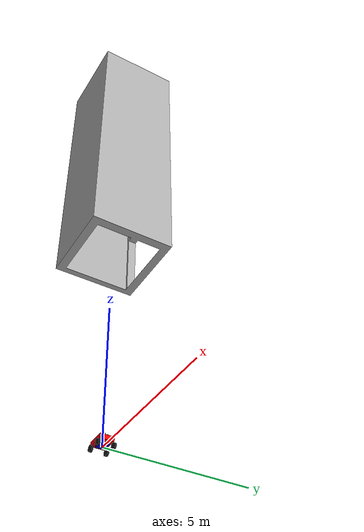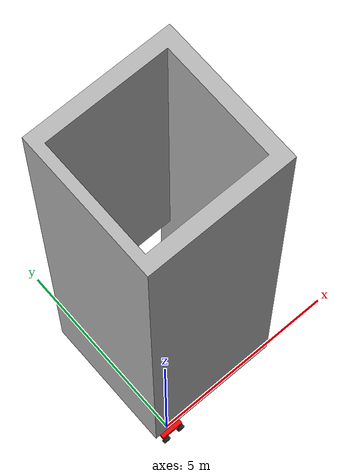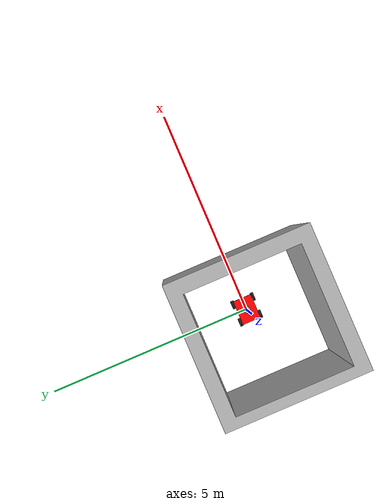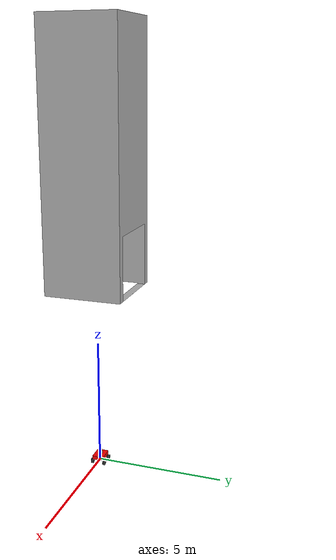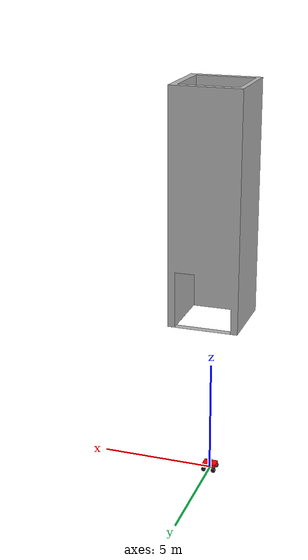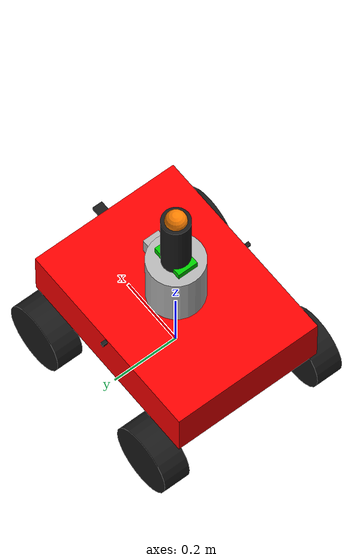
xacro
<?xml version="1.0"?>
<robot name="firefighter_robot" xmlns:xacro="http://www.ros.org/wiki/xacro">

    <!-- Robot Constants -->
    <xacro:property name="base_width" value="0.45" />
    <xacro:property name="base_length" value="0.6" />
    <xacro:property name="base_height" value="0.15" />
    <xacro:property name="wheel_radius" value="0.1" />
    <xacro:property name="wheel_width" value="0.08" />
    <xacro:property name="wheel_separation_width" value="0.5" />
    <xacro:property name="wheel_separation_length" value="0.45" />
    <xacro:property name="launcher_base_height" value="0.15" />
    <xacro:property name="launcher_base_size" value="0.3" />
    <xacro:property name="launcher_height" value="0.25" />
    <xacro:property name="launcher_radius" value="0.08" />

    <!-- New magazine properties -->
    <xacro:property name="magazine_width" value="0.08" />
    <xacro:property name="magazine_length" value="0.08" />
    <xacro:property name="magazine_height" value="0.3" />
    <xacro:property name="magazine_wall_thickness" value="0.005" />
    <xacro:property name="door_thickness" value="0.005" />
    <xacro:property name="ball_radius" value="0.03" />
    <!-- Removed redefining pi as it's already defined in ROS xacro -->

    <!-- Materials -->
    <material name="red">
        <color rgba="1.0 0.0 0.0 1.0" />
    </material>
    <material name="black">
        <color rgba="0.1 0.1 0.1 1.0" />
    </material>
    <material name="silver">
        <color rgba="0.7 0.7 0.7 1.0" />
    </material>
    <material name="blue">
        <color rgba="0.0 0.0 0.8 1.0" />
    </material>
    <material name="green">
        <color rgba="0.0 0.8 0.0 1.0" />
    </material>
    <material name="orange">
        <color rgba="1.0 0.5 0.0 1.0" />
    </material>

    <!-- Robot Base -->
    <link name="base_footprint" />

    <joint name="base_joint" type="fixed">
        <parent link="base_footprint" />
        <child link="base_link" />
        <origin xyz="0 0 ${wheel_radius}" rpy="0 0 0" />
    </joint>

    <link name="base_link">
        <visual>
            <origin xyz="0 0 ${base_height/2}" rpy="0 0 0" />
            <geometry>
                <box size="${base_length} ${base_width} ${base_height}" />
            </geometry>
            <material name="red" />
        </visual>
        <collision>
            <origin xyz="0 0 ${base_height/2}" rpy="0 0 0" />
            <geometry>
                <box size="${base_length} ${base_width} ${base_height}" />
            </geometry>
        </collision>
        <inertial>
            <origin xyz="0 0 ${base_height/2}" rpy="0 0 0" />
            <mass value="10.0" />
            <inertia ixx="0.22" ixy="0.0" ixz="0.0" iyy="0.45" iyz="0.0" izz="0.65" />
        </inertial>
    </link>

    <!-- Wheels -->
    <xacro:macro name="wheel_link" params="name x y">
        <link name="${name}_wheel">
            <visual>
                <origin xyz="0 0 0" rpy="${pi/2} 0 0" />
                <geometry>
                    <cylinder radius="${wheel_radius}" length="${wheel_width}" />
                </geometry>
                <material name="black" />
            </visual>
            <collision>
                <origin xyz="0 0 0" rpy="${pi/2} 0 0" />
                <geometry>
                    <cylinder radius="${wheel_radius}" length="${wheel_width}" />
                </geometry>
            </collision>
            <inertial>
                <origin xyz="0 0 0" rpy="${pi/2} 0 0" />
                <mass value="1.0" />
                <inertia ixx="0.0045" ixy="0.0" ixz="0.0" iyy="0.0045" iyz="0.0" izz="0.0078" />
            </inertial>
        </link>

        <!-- Inside the wheel_link macro -->
        <joint name="${name}_wheel_joint" type="continuous">
            <parent link="base_link" />
            <child link="${name}_wheel" />
            <!-- Change z from 0 to -wheel_radius to lower wheels -->
            <origin xyz="${x} ${y} -${wheel_radius}" rpy="0 0 0" />
            <axis xyz="0 1 0" />
        </joint>
    </xacro:macro>

    <!-- Create 4 wheels -->
    <xacro:wheel_link name="front_left" x="${wheel_separation_length/2}"
        y="${wheel_separation_width/2}" />
    <xacro:wheel_link name="front_right" x="${wheel_separation_length/2}"
        y="-${wheel_separation_width/2}" />
    <xacro:wheel_link name="rear_left" x="-${wheel_separation_length/2}"
        y="${wheel_separation_width/2}" />
    <xacro:wheel_link name="rear_right" x="-${wheel_separation_length/2}"
        y="-${wheel_separation_width/2}" />

    <!-- New Ball Magazine (Hollow Rectangular Tube) -->
    <link name="ball_magazine">
        <visual>
            <geometry>
                <!-- For the visual, you would ideally use a mesh file from Blender -->
                <!-- placeholder using boxes to create a hollow tube -->
                <mesh filename="file://$(find rviz_simulation)/meshes/visual/ball_storage.st"
                    scale="1 1 1" />
                <!-- Fallback if mesh not available -->
            </geometry>
            <material name="silver" />
        </visual>
        <collision>
            <geometry>
                <box size="${magazine_length} ${magazine_width} ${magazine_height}" />
            </geometry>
        </collision>
        <inertial>
            <mass value="2.0" />
            <inertia ixx="0.03" ixy="0.0" ixz="0.0" iyy="0.03" iyz="0.0" izz="0.01" />
        </inertial>
    </link>

    <joint name="magazine_joint" type="fixed">
        <parent link="base_link" />
        <child link="ball_magazine" />
        <origin xyz="0 0 ${base_height}" rpy="0 0 0" />
    </joint>

    <!-- Magazine Door (Sliding Upward) -->
    <link name="magazine_door">
        <visual>
            <origin xyz="0 0 0" rpy="0 0 0" />
            <geometry>
                <box
                    size="${magazine_length-magazine_wall_thickness*2} ${magazine_width-magazine_wall_thickness*2} ${door_thickness}" />
            </geometry>
            <material name="green" />
        </visual>
        <collision>
            <origin xyz="0 0 0" rpy="0 0 0" />
            <geometry>
                <box
                    size="${magazine_length-magazine_wall_thickness*2} ${magazine_width-magazine_wall_thickness*2} ${door_thickness}" />
            </geometry>
        </collision>
        <inertial>
            <mass value="0.1" />
            <inertia ixx="0.00001" ixy="0" ixz="0" iyy="0.00001" iyz="0" izz="0.00002" />
        </inertial>
    </link>

    <joint name="magazine_door_joint" type="prismatic">
        <parent link="ball_magazine" />
        <child link="magazine_door" />
        <!-- Position at the bottom of the magazine -->
        <origin xyz="0 0 -${magazine_height/2 + door_thickness/2}" rpy="0 0 0" />
        <axis xyz="0 0 1" /> <!-- Door slides upward -->
        <limit lower="0" upper="0.07" effort="10" velocity="0.5" /> <!-- How far the door can slide
        up -->
    </joint>

    <!-- Ball Launcher Base -->
    <link name="launcher_base">
        <visual>
            <origin xyz="0 0 ${launcher_base_height/2}" rpy="0 0 0" />
            <geometry>
                <box size="${launcher_base_size} ${launcher_base_size} ${launcher_base_height}" />
            </geometry>
            <material name="blue" />
        </visual>
        <collision>
            <origin xyz="0 0 ${launcher_base_height/2}" rpy="0 0 0" />
            <geometry>
                <box size="${launcher_base_size} ${launcher_base_size} ${launcher_base_height}" />
            </geometry>
        </collision>
        <inertial>
            <origin xyz="0 0 ${launcher_base_height/2}" rpy="0 0 0" />
            <mass value="2.0" />
            <inertia ixx="0.03" ixy="0.0" ixz="0.0" iyy="0.03" iyz="0.0" izz="0.04" />
        </inertial>
    </link>

    <joint name="launcher_base_joint" type="fixed">
        <parent link="ball_magazine" />
        <child link="launcher_base" />
        <origin xyz="0 0 -${magazine_height/2 + launcher_base_height/2}" rpy="0 0 0" />
    </joint>

    <!-- Launcher Turret (can rotate 360 degrees) -->
    <link name="launcher_turret">
        <visual>
            <origin xyz="0 0 ${launcher_height/2}" rpy="0 0 0" />
            <geometry>
                <cylinder radius="${launcher_radius}" length="${launcher_height}" />
            </geometry>
            <material name="silver" />
        </visual>
        <collision>
            <origin xyz="0 0 ${launcher_height/2}" rpy="0 0 0" />
            <geometry>
                <cylinder radius="${launcher_radius}" length="${launcher_height}" />
            </geometry>
        </collision>
        <inertial>
            <origin xyz="0 0 ${launcher_height/2}" rpy="0 0 0" />
            <mass value="1.5" />
            <inertia ixx="0.02" ixy="0.0" ixz="0.0" iyy="0.02" iyz="0.0" izz="0.01" />
        </inertial>
    </link>

    <joint name="launcher_turret_joint" type="continuous">
        <parent link="launcher_base" />
        <child link="launcher_turret" />
        <origin xyz="0 0 ${launcher_base_height}" rpy="0 0 0" />
        <axis xyz="0 0 1" />
        <limit effort="100" velocity="1.0" />
    </joint>

    <!-- Launcher Barrel (can tilt for aiming) -->
    <link name="launcher_barrel">
        <visual>
            <origin xyz="0 0 0.1" rpy="0 0 0" />
            <geometry>
                <cylinder radius="${launcher_radius/2}" length="0.2" />
            </geometry>
            <material name="black" />
        </visual>
        <collision>
            <origin xyz="0 0 0.1" rpy="0 0 0" />
            <geometry>
                <cylinder radius="${launcher_radius/2}" length="0.2" />
            </geometry>
        </collision>
        <inertial>
            <origin xyz="0 0 0.1" rpy="0 0 0" />
            <mass value="0.5" />
            <inertia ixx="0.001" ixy="0.0" ixz="0.0" iyy="0.001" iyz="0.0" izz="0.0005" />
        </inertial>
    </link>

    <joint name="launcher_barrel_joint" type="revolute">
        <parent link="launcher_turret" />
        <child link="launcher_barrel" />
        <origin xyz="0 0 ${launcher_height}" rpy="0 0 0" />
        <axis xyz="0 1 0" />
        <limit lower="-0.5" upper="0.5" effort="100" velocity="1.0" />
    </joint>

    <!-- Ball Feeder Mechanism -->
    <link name="ball_feeder">
        <visual>
            <origin xyz="0 0 0" rpy="0 0 0" />
            <geometry>
                <box size="0.1 0.06 0.04" />
            </geometry>
            <material name="green" />
        </visual>
        <collision>
            <origin xyz="0 0 0" rpy="0 0 0" />
            <geometry>
                <box size="0.1 0.06 0.04" />
            </geometry>
        </collision>
        <inertial>
            <origin xyz="0 0 0" rpy="0 0 0" />
            <mass value="0.3" />
            <inertia ixx="0.0002" ixy="0" ixz="0" iyy="0.0002" iyz="0" izz="0.0002" />
        </inertial>
    </link>

    <joint name="ball_feeder_joint" type="prismatic">
        <parent link="launcher_barrel" />
        <child link="ball_feeder" />
        <origin xyz="0 0 0" rpy="0 0 0" />
        <axis xyz="0 0 1" />
        <limit lower="0" upper="0.05" effort="50" velocity="0.5" />
    </joint>

    <!-- Ball Visualization (for demonstration) -->
    <link name="ball">
        <visual>
            <origin xyz="0 0 0" rpy="0 0 0" />
            <geometry>
                <sphere radius="${ball_radius}" />
            </geometry>
            <material name="orange" />
        </visual>
        <collision>
            <origin xyz="0 0 0" rpy="0 0 0" />
            <geometry>
                <sphere radius="${ball_radius}" />
            </geometry>
        </collision>
        <inertial>
            <origin xyz="0 0 0" rpy="0 0 0" />
            <mass value="0.1" />
            <inertia ixx="0.00004" ixy="0" ixz="0" iyy="0.00004" iyz="0" izz="0.00004" />
        </inertial>
    </link>

    <joint name="ball_joint" type="fixed">
        <parent link="launcher_barrel" />
        <child link="ball" />
        <origin xyz="0 0 0.2" rpy="0 0 0" />
    </joint>

    <!-- LiDAR Sensor (repositioned for better coverage) -->
    <link name="lidar_link">
        <visual>
            <origin xyz="0 0 0" rpy="0 0 0" />
            <geometry>
                <cylinder radius="0.05" length="0.05" />
            </geometry>
            <material name="black" />
        </visual>
        <collision>
            <origin xyz="0 0 0" rpy="0 0 0" />
            <geometry>
                <cylinder radius="0.05" length="0.05" />
            </geometry>
        </collision>
        <inertial>
            <mass value="0.2" />
            <inertia ixx="0.0001" ixy="0" ixz="0" iyy="0.0001" iyz="0" izz="0.0001" />
        </inertial>
    </link>

    <joint name="lidar_joint" type="fixed">
        <parent link="launcher_base" />
        <child link="lidar_link" />
        <origin xyz="0 0 ${launcher_base_height + 0.025}" rpy="0 0 0" />
    </joint>

    <!-- Thermal Camera (separated from barrel for stability) -->
    <link name="thermal_camera_link">
        <visual>
            <origin xyz="0 0 0" rpy="0 0 0" />
            <geometry>
                <box size="0.05 0.05 0.05" />
            </geometry>
            <material name="silver" />
        </visual>
        <collision>
            <origin xyz="0 0 0" rpy="0 0 0" />
            <geometry>
                <box size="0.05 0.05 0.05" />
            </geometry>
        </collision>
        <inertial>
            <mass value="0.1" />
            <inertia ixx="0.00001" ixy="0" ixz="0" iyy="0.00001" iyz="0" izz="0.00001" />
        </inertial>
    </link>

    <joint name="thermal_camera_joint" type="fixed">
        <parent link="launcher_turret" />
        <child link="thermal_camera_link" />
        <origin xyz="0.08 0 ${launcher_height - 0.05}" rpy="0 0 0" />
    </joint>

    <!-- IR Sensor Array (in front of the robot base) -->
    <link name="ir_array_link">
        <visual>
            <origin xyz="0 0 0" rpy="0 0 0" />
            <geometry>
                <box size="0.1 0.03 0.01" />
            </geometry>
            <material name="black" />
        </visual>
        <collision>
            <origin xyz="0 0 0" rpy="0 0 0" />
            <geometry>
                <box size="0.1 0.03 0.01" />
            </geometry>
        </collision>
        <inertial>
            <mass value="0.05" />
            <inertia ixx="0.000005" ixy="0" ixz="0" iyy="0.000005" iyz="0" izz="0.000005" />
        </inertial>
    </link>

    <joint name="ir_array_joint" type="fixed">
        <parent link="base_link" />
        <child link="ir_array_link" />
        <origin xyz="${base_length/2-0.02} 0 ${base_height - 0.01}" rpy="0 0 0" />
    </joint>

    <!-- Left IR Sensor -->
    <link name="ir_left_link">
        <visual>
            <origin xyz="0 0 0" rpy="0 0 0" />
            <geometry>
                <box size="0.03 0.01 0.01" />
            </geometry>
            <material name="black" />
        </visual>
        <collision>
            <origin xyz="0 0 0" rpy="0 0 0" />
            <geometry>
                <box size="0.03 0.01 0.01" />
            </geometry>
        </collision>
        <inertial>
            <mass value="0.01" />
            <inertia ixx="0.000001" ixy="0" ixz="0" iyy="0.000001" iyz="0" izz="0.000001" />
        </inertial>
    </link>

    <joint name="ir_left_joint" type="fixed">
        <parent link="base_link" />
        <child link="ir_left_link" />
        <origin xyz="0 ${base_width/2} ${base_height - 0.01}" rpy="0 0 ${pi/2}" />
    </joint>

    <!-- Right IR Sensor -->
    <link name="ir_right_link">
        <visual>
            <origin xyz="0 0 0" rpy="0 0 0" />
            <geometry>
                <box size="0.03 0.01 0.01" />
            </geometry>
            <material name="black" />
        </visual>
        <collision>
            <origin xyz="0 0 0" rpy="0 0 0" />
            <geometry>
                <box size="0.03 0.01 0.01" />
            </geometry>
        </collision>
        <inertial>
            <mass value="0.01" />
            <inertia ixx="0.000001" ixy="0" ixz="0" iyy="0.000001" iyz="0" izz="0.000001" />
        </inertial>
    </link>

    <joint name="ir_right_joint" type="fixed">
        <parent link="base_link" />
        <child link="ir_right_link" />
        <origin xyz="0 -${base_width/2} ${base_height - 0.01}" rpy="0 0 -${pi/2}" />
    </joint>

    <!-- IMU Sensor -->
    <link name="imu_link">
        <visual>
            <origin xyz="0 0 0" rpy="0 0 0" />
            <geometry>
                <box size="0.02 0.02 0.02" />
            </geometry>
            <material name="silver" />
        </visual>
        <collision>
            <origin xyz="0 0 0" rpy="0 0 0" />
            <geometry>
                <box size="0.02 0.02 0.02" />
            </geometry>
        </collision>
        <inertial>
            <mass value="0.01" />
            <inertia ixx="0.000001" ixy="0" ixz="0" iyy="0.000001" iyz="0" izz="0.000001" />
        </inertial>
    </link>

    <joint name="imu_joint" type="fixed">
        <parent link="base_link" />
        <child link="imu_link" />
        <origin xyz="0 0 ${base_height}" rpy="0 0 0" />
    </joint>

</robot>
